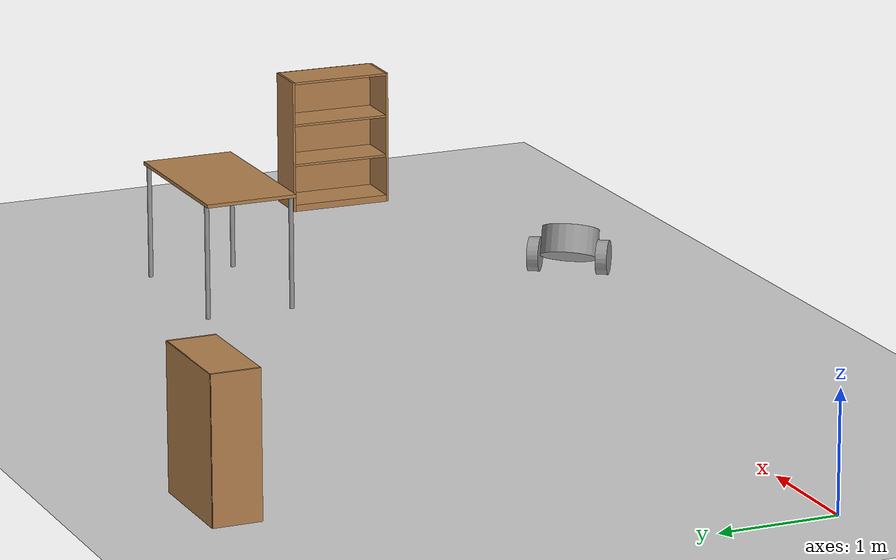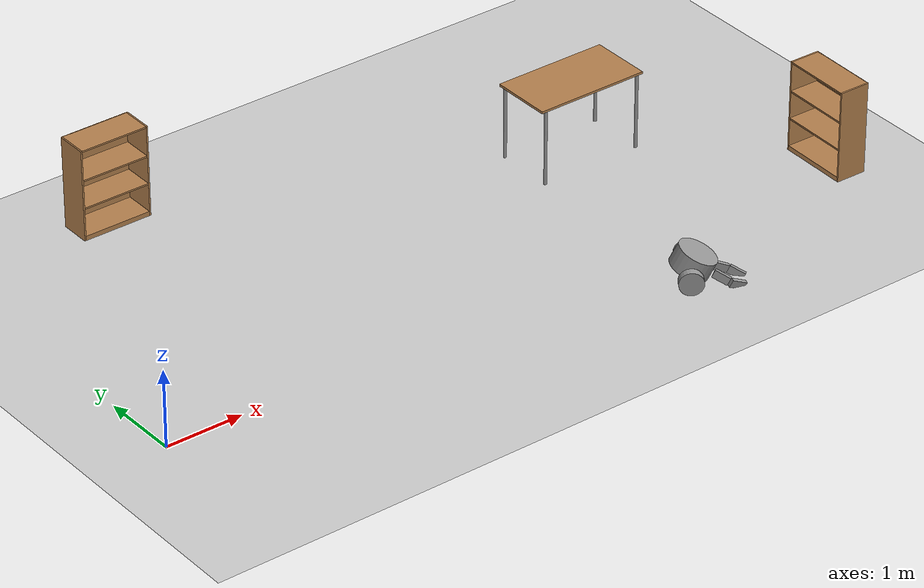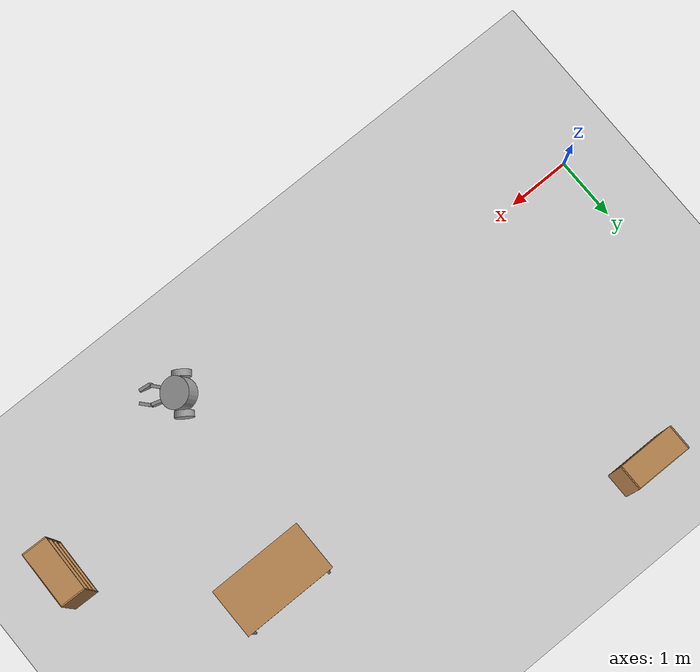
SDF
<sdf version="1.6">
 <world name="default">
  <model name="ground_plane">
   <static>1</static>
   <link name="link">
    <collision name="collision">
     <geometry><plane><normal>0 0 1</normal><size>100 100</size></plane></geometry>
     <surface><friction><ode><mu>100</mu><mu2>50</mu2></ode></friction></surface>
    </collision>
    <visual name="visual">
     <cast_shadows>0</cast_shadows>
     <geometry><plane><normal>0 0 1</normal><size>100 100</size></plane></geometry>
     <material>
      <script><uri>file://media/materials/scripts/gazebo.material</uri><name>Gazebo/Grey</name></script>
     </material>
    </visual>
   </link>
  </model>
  <model name="bookshelf">
   <static>1</static>
   <link name="link">
    <inertial><mass>1</mass></inertial>
    <collision name="back">
     <pose>0 0.005 0.6 0 -0 0</pose>
     <geometry><box><size>0.9 0.01 1.2</size></box></geometry>
    </collision>
    <visual name="visual1">
     <pose>0 0.005 0.6 0 -0 0</pose>
     <geometry><box><size>0.9 0.01 1.2</size></box></geometry>
     <material>
      <script><uri>file://media/materials/scripts/gazebo.material</uri><name>Gazebo/Wood</name></script>
     </material>
    </visual>
    <collision name="left_side">
     <pose>0.45 -0.195 0.6 0 -0 0</pose>
     <geometry><box><size>0.02 0.4 1.2</size></box></geometry>
    </collision>
    <visual name="visual2">
     <pose>0.45 -0.195 0.6 0 -0 0</pose>
     <geometry><box><size>0.02 0.4 1.2</size></box></geometry>
     <material>
      <script><uri>file://media/materials/scripts/gazebo.material</uri><name>Gazebo/Wood</name></script>
     </material>
    </visual>
    <collision name="right_side">
     <pose>-0.45 -0.195 0.6 0 -0 0</pose>
     <geometry><box><size>0.02 0.4 1.2</size></box></geometry>
    </collision>
    <visual name="visual3">
     <pose>-0.45 -0.195 0.6 0 -0 0</pose>
     <geometry><box><size>0.02 0.4 1.2</size></box></geometry>
     <material>
      <script><uri>file://media/materials/scripts/gazebo.material</uri><name>Gazebo/Wood</name></script>
     </material>
    </visual>
    <collision name="bottom">
     <pose>0 -0.195 0.03 0 -0 0</pose>
     <geometry><box><size>0.88 0.4 0.06</size></box></geometry>
    </collision>
    <visual name="visual4">
     <pose>0 -0.195 0.03 0 -0 0</pose>
     <geometry><box><size>0.88 0.4 0.06</size></box></geometry>
     <material>
      <script><uri>file://media/materials/scripts/gazebo.material</uri><name>Gazebo/Wood</name></script>
     </material>
    </visual>
    <collision name="top">
     <pose>0 -0.195 1.19 0 -0 0</pose>
     <geometry><box><size>0.88 0.4 0.02</size></box></geometry>
    </collision>
    <visual name="visual5">
     <pose>0 -0.195 1.19 0 -0 0</pose>
     <geometry><box><size>0.88 0.4 0.02</size></box></geometry>
     <material>
      <script><uri>file://media/materials/scripts/gazebo.material</uri><name>Gazebo/Wood</name></script>
     </material>
    </visual>
    <collision name="low_shelf">
     <pose>0 -0.195 0.43 0 -0 0</pose>
     <geometry><box><size>0.88 0.4 0.02</size></box></geometry>
    </collision>
    <visual name="visual6">
     <pose>0 -0.195 0.43 0 -0 0</pose>
     <geometry><box><size>0.88 0.4 0.02</size></box></geometry>
     <material>
      <script><uri>file://media/materials/scripts/gazebo.material</uri><name>Gazebo/Wood</name></script>
     </material>
    </visual>
    <collision name="high_shelf">
     <pose>0 -0.195 0.8 0 -0 0</pose>
     <geometry><box><size>0.88 0.4 0.02</size></box></geometry>
    </collision>
    <visual name="visual7">
     <pose>0 -0.195 0.8 0 -0 0</pose>
     <geometry><box><size>0.88 0.4 0.02</size></box></geometry>
     <material>
      <script><uri>file://media/materials/scripts/gazebo.material</uri><name>Gazebo/Wood</name></script>
     </material>
    </visual>
   </link>
   <pose>2.08701 4.36525 0 0 -0 0</pose>
  </model>
  <model name="clawrobot_clone">
   <link name="link_0">
    <pose>-0.255901 0.018867 0.029197 0 -0 0</pose>
    <inertial>
     <mass>1</mass>
     <inertia><ixx>0.145833</ixx><ixy>0</ixy><ixz>0</ixz><iyy>0.145833</iyy><iyz>0</iyz><izz>0.125</izz></inertia>
    </inertial>
    <visual name="visual">
     <geometry><cylinder><radius>0.25</radius><length>0.25</length></cylinder></geometry>
     <material>
      <lighting>1</lighting>
      <script><uri>file://media/materials/scripts/gazebo.material</uri><name>Gazebo/Grey</name></script>
      <shader type="pixel"><normal_map>__default__</normal_map></shader>
      <ambient>0.3 0.3 0.3 1</ambient>
      <diffuse>0.7 0.7 0.7 1</diffuse>
      <specular>0.01 0.01 0.01 1</specular>
      <emissive>0 0 0 1</emissive>
     </material>
    </visual>
    <collision name="collision">
     <geometry><cylinder><radius>0.25</radius><length>0.25</length></cylinder></geometry>
     <surface>
      <friction>
       <ode><mu>1</mu><mu2>1</mu2><fdir1>0 0 0</fdir1><slip1>0</slip1><slip2>0</slip2></ode>
       <torsional>
        <coefficient>1</coefficient>
        <patch_radius>0</patch_radius>
        <surface_radius>0</surface_radius>
        <use_patch_radius>1</use_patch_radius>
        <ode><slip>0</slip></ode>
       </torsional>
      </friction>
      <bounce><restitution_coefficient>0</restitution_coefficient><threshold>1e+06</threshold></bounce>
      <contact>
       <collide_without_contact>0</collide_without_contact>
       <collide_without_contact_bitmask>1</collide_without_contact_bitmask>
       <collide_bitmask>1</collide_bitmask>
       <ode>
        <soft_cfm>0</soft_cfm>
        <soft_erp>0.2</soft_erp>
        <kp>1e+13</kp>
        <kd>1</kd>
        <max_vel>0.01</max_vel>
        <min_depth>0</min_depth>
       </ode>
       <bullet>
        <split_impulse>1</split_impulse>
        <split_impulse_penetration_threshold>-0.01</split_impulse_penetration_threshold>
        <soft_cfm>0</soft_cfm>
        <soft_erp>0.2</soft_erp>
        <kp>1e+13</kp>
        <kd>1</kd>
       </bullet>
      </contact>
     </surface>
    </collision>
   </link>
   <link name="link_2">
    <pose>-0.255901 -0.281147 -0.083741 1.5707 -0 0</pose>
    <inertial>
     <mass>1</mass>
     <inertia><ixx>0.145833</ixx><ixy>0</ixy><ixz>0</ixz><iyy>0.145833</iyy><iyz>0</iyz><izz>0.125</izz></inertia>
    </inertial>
    <visual name="visual">
     <geometry><cylinder><radius>0.15</radius><length>0.1</length></cylinder></geometry>
     <material>
      <lighting>1</lighting>
      <script><uri>file://media/materials/scripts/gazebo.material</uri><name>Gazebo/Grey</name></script>
      <shader type="pixel"><normal_map>__default__</normal_map></shader>
      <ambient>0.3 0.3 0.3 1</ambient>
      <diffuse>0.7 0.7 0.7 1</diffuse>
      <specular>0.01 0.01 0.01 1</specular>
      <emissive>0 0 0 1</emissive>
     </material>
    </visual>
    <collision name="collision">
     <geometry><cylinder><radius>0.15</radius><length>0.1</length></cylinder></geometry>
     <surface>
      <friction>
       <ode><mu>1</mu><mu2>1</mu2><fdir1>0 0 0</fdir1><slip1>0</slip1><slip2>0</slip2></ode>
       <torsional>
        <coefficient>1</coefficient>
        <patch_radius>0</patch_radius>
        <surface_radius>0</surface_radius>
        <use_patch_radius>1</use_patch_radius>
        <ode><slip>0</slip></ode>
       </torsional>
      </friction>
      <bounce><restitution_coefficient>0</restitution_coefficient><threshold>1e+06</threshold></bounce>
      <contact>
       <collide_without_contact>0</collide_without_contact>
       <collide_without_contact_bitmask>1</collide_without_contact_bitmask>
       <collide_bitmask>1</collide_bitmask>
       <ode>
        <soft_cfm>0</soft_cfm>
        <soft_erp>0.2</soft_erp>
        <kp>1e+13</kp>
        <kd>1</kd>
        <max_vel>0.01</max_vel>
        <min_depth>0</min_depth>
       </ode>
       <bullet>
        <split_impulse>1</split_impulse>
        <split_impulse_penetration_threshold>-0.01</split_impulse_penetration_threshold>
        <soft_cfm>0</soft_cfm>
        <soft_erp>0.2</soft_erp>
        <kp>1e+13</kp>
        <kd>1</kd>
       </bullet>
      </contact>
     </surface>
    </collision>
   </link>
   <link name="link_2_clone">
    <pose>-0.255901 0.318882 -0.083741 1.5707 -0 0</pose>
    <inertial>
     <mass>1</mass>
     <inertia><ixx>0.145833</ixx><ixy>0</ixy><ixz>0</ixz><iyy>0.145833</iyy><iyz>0</iyz><izz>0.125</izz></inertia>
    </inertial>
    <visual name="visual">
     <geometry><cylinder><radius>0.15</radius><length>0.1</length></cylinder></geometry>
     <material>
      <lighting>1</lighting>
      <script><uri>file://media/materials/scripts/gazebo.material</uri><name>Gazebo/Grey</name></script>
      <shader type="pixel"><normal_map>__default__</normal_map></shader>
      <ambient>0.3 0.3 0.3 1</ambient>
      <diffuse>0.7 0.7 0.7 1</diffuse>
      <specular>0.01 0.01 0.01 1</specular>
      <emissive>0 0 0 1</emissive>
     </material>
    </visual>
    <collision name="collision">
     <geometry><cylinder><radius>0.15</radius><length>0.1</length></cylinder></geometry>
     <surface>
      <friction>
       <ode><mu>1</mu><mu2>1</mu2><fdir1>0 0 0</fdir1><slip1>0</slip1><slip2>0</slip2></ode>
       <torsional>
        <coefficient>1</coefficient>
        <patch_radius>0</patch_radius>
        <surface_radius>0</surface_radius>
        <use_patch_radius>1</use_patch_radius>
        <ode><slip>0</slip></ode>
       </torsional>
      </friction>
      <bounce><restitution_coefficient>0</restitution_coefficient><threshold>1e+06</threshold></bounce>
      <contact>
       <collide_without_contact>0</collide_without_contact>
       <collide_without_contact_bitmask>1</collide_without_contact_bitmask>
       <collide_bitmask>1</collide_bitmask>
       <ode>
        <soft_cfm>0</soft_cfm>
        <soft_erp>0.2</soft_erp>
        <kp>1e+13</kp>
        <kd>1</kd>
        <max_vel>0.01</max_vel>
        <min_depth>0</min_depth>
       </ode>
       <bullet>
        <split_impulse>1</split_impulse>
        <split_impulse_penetration_threshold>-0.01</split_impulse_penetration_threshold>
        <soft_cfm>0</soft_cfm>
        <soft_erp>0.2</soft_erp>
        <kp>1e+13</kp>
        <kd>1</kd>
       </bullet>
      </contact>
     </surface>
    </collision>
   </link>
   <link name="link_3">
    <pose>0.085126 -0.126526 0.034572 0 0 -0.293233</pose>
    <inertial>
     <mass>1</mass>
     <inertia>
      <ixx>0.166667</ixx>
      <ixy>0</ixy>
      <ixz>0</ixz>
      <iyy>0.166667</iyy>
      <iyz>0</iyz>
      <izz>0.166667</izz>
     </inertia>
    </inertial>
    <visual name="visual">
     <geometry><box><size>0.2 0.05 0.1</size></box></geometry>
     <material>
      <lighting>1</lighting>
      <script><uri>file://media/materials/scripts/gazebo.material</uri><name>Gazebo/Grey</name></script>
      <shader type="pixel"><normal_map>__default__</normal_map></shader>
      <ambient>0.3 0.3 0.3 1</ambient>
      <diffuse>0.7 0.7 0.7 1</diffuse>
      <specular>0.01 0.01 0.01 1</specular>
      <emissive>0 0 0 1</emissive>
     </material>
    </visual>
    <collision name="collision">
     <geometry><box><size>0.2 0.05 0.1</size></box></geometry>
     <surface>
      <friction>
       <ode><mu>1</mu><mu2>1</mu2><fdir1>0 0 0</fdir1><slip1>0</slip1><slip2>0</slip2></ode>
       <torsional>
        <coefficient>1</coefficient>
        <patch_radius>0</patch_radius>
        <surface_radius>0</surface_radius>
        <use_patch_radius>1</use_patch_radius>
        <ode><slip>0</slip></ode>
       </torsional>
      </friction>
      <bounce><restitution_coefficient>0</restitution_coefficient><threshold>1e+06</threshold></bounce>
      <contact>
       <collide_without_contact>0</collide_without_contact>
       <collide_without_contact_bitmask>1</collide_without_contact_bitmask>
       <collide_bitmask>1</collide_bitmask>
       <ode>
        <soft_cfm>0</soft_cfm>
        <soft_erp>0.2</soft_erp>
        <kp>1e+13</kp>
        <kd>1</kd>
        <max_vel>0.01</max_vel>
        <min_depth>0</min_depth>
       </ode>
       <bullet>
        <split_impulse>1</split_impulse>
        <split_impulse_penetration_threshold>-0.01</split_impulse_penetration_threshold>
        <soft_cfm>0</soft_cfm>
        <soft_erp>0.2</soft_erp>
        <kp>1e+13</kp>
        <kd>1</kd>
       </bullet>
      </contact>
     </surface>
    </collision>
   </link>
   <link name="link_3_clone">
    <pose>0.093783 0.107082 0.034572 -0.002709 -0.012513 0.213214</pose>
    <inertial>
     <mass>1</mass>
     <inertia>
      <ixx>0.166667</ixx>
      <ixy>0</ixy>
      <ixz>0</ixz>
      <iyy>0.166667</iyy>
      <iyz>0</iyz>
      <izz>0.166667</izz>
     </inertia>
    </inertial>
    <visual name="visual">
     <geometry><box><size>0.2 0.05 0.1</size></box></geometry>
     <material>
      <lighting>1</lighting>
      <script><uri>file://media/materials/scripts/gazebo.material</uri><name>Gazebo/Grey</name></script>
      <shader type="pixel"><normal_map>__default__</normal_map></shader>
      <ambient>0.3 0.3 0.3 1</ambient>
      <diffuse>0.7 0.7 0.7 1</diffuse>
      <specular>0.01 0.01 0.01 1</specular>
      <emissive>0 0 0 1</emissive>
     </material>
    </visual>
    <collision name="collision">
     <geometry><box><size>0.2 0.05 0.1</size></box></geometry>
     <surface>
      <friction>
       <ode><mu>1</mu><mu2>1</mu2><fdir1>0 0 0</fdir1><slip1>0</slip1><slip2>0</slip2></ode>
       <torsional>
        <coefficient>1</coefficient>
        <patch_radius>0</patch_radius>
        <surface_radius>0</surface_radius>
        <use_patch_radius>1</use_patch_radius>
        <ode><slip>0</slip></ode>
       </torsional>
      </friction>
      <bounce><restitution_coefficient>0</restitution_coefficient><threshold>1e+06</threshold></bounce>
      <contact>
       <collide_without_contact>0</collide_without_contact>
       <collide_without_contact_bitmask>1</collide_without_contact_bitmask>
       <collide_bitmask>1</collide_bitmask>
       <ode>
        <soft_cfm>0</soft_cfm>
        <soft_erp>0.2</soft_erp>
        <kp>1e+13</kp>
        <kd>1</kd>
        <max_vel>0.01</max_vel>
        <min_depth>0</min_depth>
       </ode>
       <bullet>
        <split_impulse>1</split_impulse>
        <split_impulse_penetration_threshold>-0.01</split_impulse_penetration_threshold>
        <soft_cfm>0</soft_cfm>
        <soft_erp>0.2</soft_erp>
        <kp>1e+13</kp>
        <kd>1</kd>
       </bullet>
      </contact>
     </surface>
    </collision>
   </link>
   <link name="link_3_clone_0">
    <pose>0.287516 -0.142576 0.034572 0 -0 0.359319</pose>
    <inertial>
     <mass>1</mass>
     <inertia>
      <ixx>0.166667</ixx>
      <ixy>0</ixy>
      <ixz>0</ixz>
      <iyy>0.166667</iyy>
      <iyz>0</iyz>
      <izz>0.166667</izz>
     </inertia>
    </inertial>
    <visual name="visual">
     <geometry><box><size>0.2 0.05 0.1</size></box></geometry>
     <material>
      <lighting>1</lighting>
      <script><uri>file://media/materials/scripts/gazebo.material</uri><name>Gazebo/Grey</name></script>
      <shader type="pixel"><normal_map>__default__</normal_map></shader>
      <ambient>0.3 0.3 0.3 1</ambient>
      <diffuse>0.7 0.7 0.7 1</diffuse>
      <specular>0.01 0.01 0.01 1</specular>
      <emissive>0 0 0 1</emissive>
     </material>
    </visual>
    <collision name="collision">
     <geometry><box><size>0.2 0.05 0.1</size></box></geometry>
     <surface>
      <friction>
       <ode><mu>1</mu><mu2>1</mu2><fdir1>0 0 0</fdir1><slip1>0</slip1><slip2>0</slip2></ode>
       <torsional>
        <coefficient>1</coefficient>
        <patch_radius>0</patch_radius>
        <surface_radius>0</surface_radius>
        <use_patch_radius>1</use_patch_radius>
        <ode><slip>0</slip></ode>
       </torsional>
      </friction>
      <bounce><restitution_coefficient>0</restitution_coefficient><threshold>1e+06</threshold></bounce>
      <contact>
       <collide_without_contact>0</collide_without_contact>
       <collide_without_contact_bitmask>1</collide_without_contact_bitmask>
       <collide_bitmask>1</collide_bitmask>
       <ode>
        <soft_cfm>0</soft_cfm>
        <soft_erp>0.2</soft_erp>
        <kp>1e+13</kp>
        <kd>1</kd>
        <max_vel>0.01</max_vel>
        <min_depth>0</min_depth>
       </ode>
       <bullet>
        <split_impulse>1</split_impulse>
        <split_impulse_penetration_threshold>-0.01</split_impulse_penetration_threshold>
        <soft_cfm>0</soft_cfm>
        <soft_erp>0.2</soft_erp>
        <kp>1e+13</kp>
        <kd>1</kd>
       </bullet>
      </contact>
     </surface>
    </collision>
   </link>
   <link name="link_3_clone_1">
    <pose>0.301281 0.105424 0.034572 0 0 -0.267111</pose>
    <inertial>
     <mass>1</mass>
     <inertia>
      <ixx>0.166667</ixx>
      <ixy>0</ixy>
      <ixz>0</ixz>
      <iyy>0.166667</iyy>
      <iyz>0</iyz>
      <izz>0.166667</izz>
     </inertia>
    </inertial>
    <visual name="visual">
     <geometry><box><size>0.2 0.05 0.1</size></box></geometry>
     <material>
      <lighting>1</lighting>
      <script><uri>file://media/materials/scripts/gazebo.material</uri><name>Gazebo/Grey</name></script>
      <shader type="pixel"><normal_map>__default__</normal_map></shader>
      <ambient>0.3 0.3 0.3 1</ambient>
      <diffuse>0.7 0.7 0.7 1</diffuse>
      <specular>0.01 0.01 0.01 1</specular>
      <emissive>0 0 0 1</emissive>
     </material>
    </visual>
    <collision name="collision">
     <geometry><box><size>0.2 0.05 0.1</size></box></geometry>
     <surface>
      <friction>
       <ode><mu>1</mu><mu2>1</mu2><fdir1>0 0 0</fdir1><slip1>0</slip1><slip2>0</slip2></ode>
       <torsional>
        <coefficient>1</coefficient>
        <patch_radius>0</patch_radius>
        <surface_radius>0</surface_radius>
        <use_patch_radius>1</use_patch_radius>
        <ode><slip>0</slip></ode>
       </torsional>
      </friction>
      <bounce><restitution_coefficient>0</restitution_coefficient><threshold>1e+06</threshold></bounce>
      <contact>
       <collide_without_contact>0</collide_without_contact>
       <collide_without_contact_bitmask>1</collide_without_contact_bitmask>
       <collide_bitmask>1</collide_bitmask>
       <ode>
        <soft_cfm>0</soft_cfm>
        <soft_erp>0.2</soft_erp>
        <kp>1e+13</kp>
        <kd>1</kd>
        <max_vel>0.01</max_vel>
        <min_depth>0</min_depth>
       </ode>
       <bullet>
        <split_impulse>1</split_impulse>
        <split_impulse_penetration_threshold>-0.01</split_impulse_penetration_threshold>
        <soft_cfm>0</soft_cfm>
        <soft_erp>0.2</soft_erp>
        <kp>1e+13</kp>
        <kd>1</kd>
       </bullet>
      </contact>
     </surface>
    </collision>
   </link>
   <joint name="link_0_JOINT_0" type="revolute">
    <parent>link_0</parent>
    <child>link_2</child>
    <axis>
     <xyz>0 0 1</xyz>
     <use_parent_model_frame>0</use_parent_model_frame>
     <limit>
      <lower>-1.79769e+308</lower>
      <upper>1.79769e+308</upper>
      <effort>-1</effort>
      <velocity>-1</velocity>
     </limit>
     <dynamics>
      <spring_reference>0</spring_reference>
      <spring_stiffness>0</spring_stiffness>
      <damping>0</damping>
     </dynamics>
    </axis>
    <physics>
     <ode><limit><cfm>0</cfm><erp>0.2</erp></limit><suspension><cfm>0</cfm><erp>0.2</erp></suspension></ode>
    </physics>
   </joint>
   <joint name="link_0_JOINT_1" type="revolute">
    <parent>link_0</parent>
    <child>link_2_clone</child>
    <axis>
     <xyz>0 0 1</xyz>
     <use_parent_model_frame>0</use_parent_model_frame>
     <limit>
      <lower>-1.79769e+308</lower>
      <upper>1.79769e+308</upper>
      <effort>-1</effort>
      <velocity>-1</velocity>
     </limit>
     <dynamics>
      <spring_reference>0</spring_reference>
      <spring_stiffness>0</spring_stiffness>
      <damping>0</damping>
     </dynamics>
    </axis>
    <physics>
     <ode><limit><cfm>0</cfm><erp>0.2</erp></limit><suspension><cfm>0</cfm><erp>0.2</erp></suspension></ode>
    </physics>
   </joint>
   <joint name="link_0_JOINT_2" type="revolute">
    <parent>link_0</parent>
    <child>link_3</child>
    <axis>
     <xyz>1 0 0</xyz>
     <use_parent_model_frame>0</use_parent_model_frame>
     <limit>
      <lower>-1.79769e+308</lower>
      <upper>1.79769e+308</upper>
      <effort>-1</effort>
      <velocity>-1</velocity>
     </limit>
     <dynamics>
      <spring_reference>0</spring_reference>
      <spring_stiffness>0</spring_stiffness>
      <damping>0</damping>
     </dynamics>
    </axis>
    <physics>
     <ode><limit><cfm>0</cfm><erp>0.2</erp></limit><suspension><cfm>0</cfm><erp>0.2</erp></suspension></ode>
    </physics>
   </joint>
   <joint name="link_0_JOINT_4" type="revolute">
    <parent>link_0</parent>
    <child>link_3_clone</child>
    <axis>
     <xyz>1 0 0</xyz>
     <use_parent_model_frame>0</use_parent_model_frame>
     <limit>
      <lower>-1.79769e+308</lower>
      <upper>1.79769e+308</upper>
      <effort>-1</effort>
      <velocity>-1</velocity>
     </limit>
     <dynamics>
      <spring_reference>0</spring_reference>
      <spring_stiffness>0</spring_stiffness>
      <damping>0</damping>
     </dynamics>
    </axis>
    <physics>
     <ode><limit><cfm>0</cfm><erp>0.2</erp></limit><suspension><cfm>0</cfm><erp>0.2</erp></suspension></ode>
    </physics>
   </joint>
   <joint name="link_3_JOINT_3" type="revolute">
    <parent>link_3</parent>
    <child>link_3_clone_0</child>
    <axis>
     <xyz>1 0 0</xyz>
     <use_parent_model_frame>0</use_parent_model_frame>
     <limit>
      <lower>-1.79769e+308</lower>
      <upper>1.79769e+308</upper>
      <effort>-1</effort>
      <velocity>-1</velocity>
     </limit>
     <dynamics>
      <spring_reference>0</spring_reference>
      <spring_stiffness>0</spring_stiffness>
      <damping>0</damping>
     </dynamics>
    </axis>
    <physics>
     <ode><limit><cfm>0</cfm><erp>0.2</erp></limit><suspension><cfm>0</cfm><erp>0.2</erp></suspension></ode>
    </physics>
   </joint>
   <joint name="link_3_clone_JOINT_5" type="revolute">
    <parent>link_3_clone</parent>
    <child>link_3_clone_1</child>
    <axis>
     <xyz>1 0 0</xyz>
     <use_parent_model_frame>0</use_parent_model_frame>
     <limit>
      <lower>-1.79769e+308</lower>
      <upper>1.79769e+308</upper>
      <effort>-1</effort>
      <velocity>-1</velocity>
     </limit>
     <dynamics>
      <spring_reference>0</spring_reference>
      <spring_stiffness>0</spring_stiffness>
      <damping>0</damping>
     </dynamics>
    </axis>
    <physics>
     <ode><limit><cfm>0</cfm><erp>0.2</erp></limit><suspension><cfm>0</cfm><erp>0.2</erp></suspension></ode>
    </physics>
   </joint>
   <static>0</static>
   <pose>6.79183 -1.04144 0.114598 1.2e-05 0.44812 -0.599723</pose>
  </model>
  <model name="table">
   <static>1</static>
   <link name="link">
    <collision name="surface">
     <pose>0 0 1 0 -0 0</pose>
     <geometry><box><size>1.5 0.8 0.03</size></box></geometry>
     <surface><friction><ode><mu>0.6</mu><mu2>0.6</mu2></ode></friction></surface>
    </collision>
    <visual name="visual1">
     <pose>0 0 1 0 -0 0</pose>
     <geometry><box><size>1.5 0.8 0.03</size></box></geometry>
     <material>
      <script><uri>file://media/materials/scripts/gazebo.material</uri><name>Gazebo/Wood</name></script>
     </material>
    </visual>
    <collision name="front_left_leg">
     <pose>0.68 0.38 0.5 0 -0 0</pose>
     <geometry><cylinder><radius>0.02</radius><length>1</length></cylinder></geometry>
    </collision>
    <visual name="front_left_leg">
     <pose>0.68 0.38 0.5 0 -0 0</pose>
     <geometry><cylinder><radius>0.02</radius><length>1</length></cylinder></geometry>
     <material>
      <script><uri>file://media/materials/scripts/gazebo.material</uri><name>Gazebo/Grey</name></script>
     </material>
    </visual>
    <collision name="front_right_leg">
     <pose>0.68 -0.38 0.5 0 -0 0</pose>
     <geometry><cylinder><radius>0.02</radius><length>1</length></cylinder></geometry>
    </collision>
    <visual name="front_right_leg">
     <pose>0.68 -0.38 0.5 0 -0 0</pose>
     <geometry><cylinder><radius>0.02</radius><length>1</length></cylinder></geometry>
     <material>
      <script><uri>file://media/materials/scripts/gazebo.material</uri><name>Gazebo/Grey</name></script>
     </material>
    </visual>
    <collision name="back_right_leg">
     <pose>-0.68 -0.38 0.5 0 -0 0</pose>
     <geometry><cylinder><radius>0.02</radius><length>1</length></cylinder></geometry>
    </collision>
    <visual name="back_right_leg">
     <pose>-0.68 -0.38 0.5 0 -0 0</pose>
     <geometry><cylinder><radius>0.02</radius><length>1</length></cylinder></geometry>
     <material>
      <script><uri>file://media/materials/scripts/gazebo.material</uri><name>Gazebo/Grey</name></script>
     </material>
    </visual>
    <collision name="back_left_leg">
     <pose>-0.68 0.38 0.5 0 -0 0</pose>
     <geometry><cylinder><radius>0.02</radius><length>1</length></cylinder></geometry>
    </collision>
    <visual name="back_left_leg">
     <pose>-0.68 0.38 0.5 0 -0 0</pose>
     <geometry><cylinder><radius>0.02</radius><length>1</length></cylinder></geometry>
     <material>
      <script><uri>file://media/materials/scripts/gazebo.material</uri><name>Gazebo/Grey</name></script>
     </material>
    </visual>
   </link>
   <pose>7.25285 2.09994 0 0 -0 0</pose>
  </model>
  <model name="bookshelf_0">
   <static>1</static>
   <link name="link">
    <inertial><mass>1</mass></inertial>
    <collision name="back">
     <pose>0 0.005 0.6 0 -0 0</pose>
     <geometry><box><size>0.9 0.01 1.2</size></box></geometry>
    </collision>
    <visual name="visual1">
     <pose>0 0.005 0.6 0 -0 0</pose>
     <geometry><box><size>0.9 0.01 1.2</size></box></geometry>
     <material>
      <script><uri>file://media/materials/scripts/gazebo.material</uri><name>Gazebo/Wood</name></script>
     </material>
    </visual>
    <collision name="left_side">
     <pose>0.45 -0.195 0.6 0 -0 0</pose>
     <geometry><box><size>0.02 0.4 1.2</size></box></geometry>
    </collision>
    <visual name="visual2">
     <pose>0.45 -0.195 0.6 0 -0 0</pose>
     <geometry><box><size>0.02 0.4 1.2</size></box></geometry>
     <material>
      <script><uri>file://media/materials/scripts/gazebo.material</uri><name>Gazebo/Wood</name></script>
     </material>
    </visual>
    <collision name="right_side">
     <pose>-0.45 -0.195 0.6 0 -0 0</pose>
     <geometry><box><size>0.02 0.4 1.2</size></box></geometry>
    </collision>
    <visual name="visual3">
     <pose>-0.45 -0.195 0.6 0 -0 0</pose>
     <geometry><box><size>0.02 0.4 1.2</size></box></geometry>
     <material>
      <script><uri>file://media/materials/scripts/gazebo.material</uri><name>Gazebo/Wood</name></script>
     </material>
    </visual>
    <collision name="bottom">
     <pose>0 -0.195 0.03 0 -0 0</pose>
     <geometry><box><size>0.88 0.4 0.06</size></box></geometry>
    </collision>
    <visual name="visual4">
     <pose>0 -0.195 0.03 0 -0 0</pose>
     <geometry><box><size>0.88 0.4 0.06</size></box></geometry>
     <material>
      <script><uri>file://media/materials/scripts/gazebo.material</uri><name>Gazebo/Wood</name></script>
     </material>
    </visual>
    <collision name="top">
     <pose>0 -0.195 1.19 0 -0 0</pose>
     <geometry><box><size>0.88 0.4 0.02</size></box></geometry>
    </collision>
    <visual name="visual5">
     <pose>0 -0.195 1.19 0 -0 0</pose>
     <geometry><box><size>0.88 0.4 0.02</size></box></geometry>
     <material>
      <script><uri>file://media/materials/scripts/gazebo.material</uri><name>Gazebo/Wood</name></script>
     </material>
    </visual>
    <collision name="low_shelf">
     <pose>0 -0.195 0.43 0 -0 0</pose>
     <geometry><box><size>0.88 0.4 0.02</size></box></geometry>
    </collision>
    <visual name="visual6">
     <pose>0 -0.195 0.43 0 -0 0</pose>
     <geometry><box><size>0.88 0.4 0.02</size></box></geometry>
     <material>
      <script><uri>file://media/materials/scripts/gazebo.material</uri><name>Gazebo/Wood</name></script>
     </material>
    </visual>
    <collision name="high_shelf">
     <pose>0 -0.195 0.8 0 -0 0</pose>
     <geometry><box><size>0.88 0.4 0.02</size></box></geometry>
    </collision>
    <visual name="visual7">
     <pose>0 -0.195 0.8 0 -0 0</pose>
     <geometry><box><size>0.88 0.4 0.02</size></box></geometry>
     <material>
      <script><uri>file://media/materials/scripts/gazebo.material</uri><name>Gazebo/Wood</name></script>
     </material>
    </visual>
   </link>
   <pose>9.70329 0.111679 0 0 0 -1.59273</pose>
  </model>
 </world>
</sdf>
